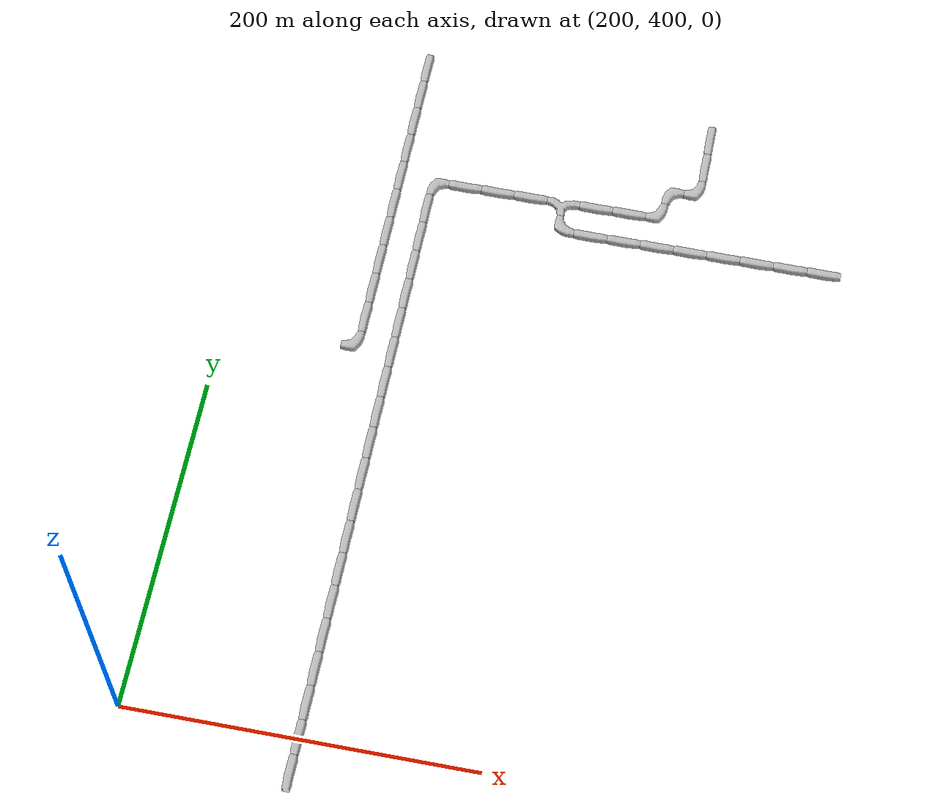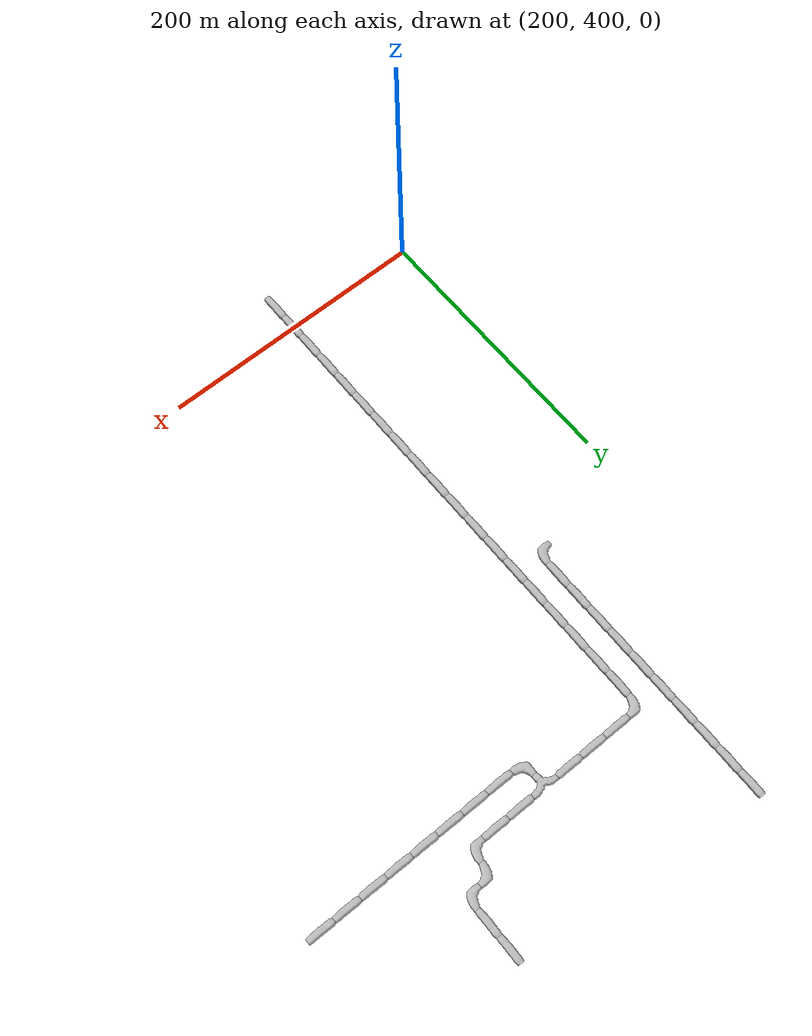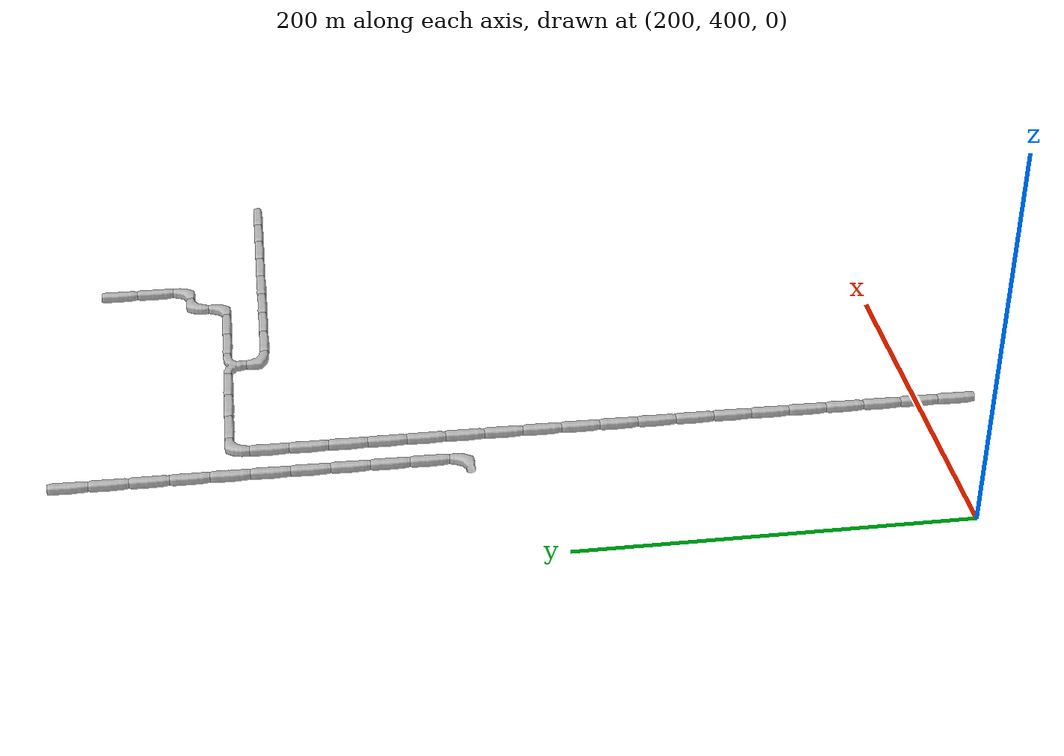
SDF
<sdf version="1.6">
 <world name="cave_16000_32">
  <include>
   <static>true</static>
   <name>cave_15_19</name>
   <pose>300 380 0 0 0 0.0</pose>
   <uri>model://cave_straight_20m</uri>
  </include>
  <include>
   <static>true</static>
   <name>cave_15_20</name>
   <pose>300 400 0 0 0 0.0</pose>
   <uri>model://cave_straight_20m</uri>
  </include>
  <include>
   <static>true</static>
   <name>cave_15_21</name>
   <pose>300 420 0 0 0 0.0</pose>
   <uri>model://cave_straight_20m</uri>
  </include>
  <include>
   <static>true</static>
   <name>cave_15_22</name>
   <pose>300 440 0 0 0 0.0</pose>
   <uri>model://cave_straight_20m</uri>
  </include>
  <include>
   <static>true</static>
   <name>cave_15_23</name>
   <pose>300 460 0 0 0 0.0</pose>
   <uri>model://cave_straight_20m</uri>
  </include>
  <include>
   <static>true</static>
   <name>cave_15_24</name>
   <pose>300 480 0 0 0 0.0</pose>
   <uri>model://cave_straight_20m</uri>
  </include>
  <include>
   <static>true</static>
   <name>cave_15_25</name>
   <pose>300 500 0 0 0 0.0</pose>
   <uri>model://cave_straight_20m</uri>
  </include>
  <include>
   <static>true</static>
   <name>cave_15_26</name>
   <pose>300 520 0 0 0 0.0</pose>
   <uri>model://cave_straight_20m</uri>
  </include>
  <include>
   <static>true</static>
   <name>cave_15_27</name>
   <pose>300 540 0 0 0 0.0</pose>
   <uri>model://cave_straight_20m</uri>
  </include>
  <include>
   <static>true</static>
   <name>cave_15_28</name>
   <pose>300 560 0 0 0 0.0</pose>
   <uri>model://cave_straight_20m</uri>
  </include>
  <include>
   <static>true</static>
   <name>cave_15_29</name>
   <pose>300 580 0 0 0 0.0</pose>
   <uri>model://cave_straight_20m</uri>
  </include>
  <include>
   <static>true</static>
   <name>cave_15_30</name>
   <pose>300 600 0 0 0 0.0</pose>
   <uri>model://cave_straight_20m</uri>
  </include>
  <include>
   <static>true</static>
   <name>cave_15_31</name>
   <pose>300 620 0 0 0 0.0</pose>
   <uri>model://cave_straight_20m</uri>
  </include>
  <include>
   <static>true</static>
   <name>cave_15_32</name>
   <pose>300 640 0 0 0 0.0</pose>
   <uri>model://cave_straight_20m</uri>
  </include>
  <include>
   <static>true</static>
   <name>cave_15_33</name>
   <pose>300 660 0 0 0 0.0</pose>
   <uri>model://cave_straight_20m</uri>
  </include>
  <include>
   <static>true</static>
   <name>cave_15_34</name>
   <pose>300 680 0 0 0 0.0</pose>
   <uri>model://cave_straight_20m</uri>
  </include>
  <include>
   <static>true</static>
   <name>cave_15_35</name>
   <pose>300 700 0 0 0 0.0</pose>
   <uri>model://cave_straight_20m</uri>
  </include>
  <include>
   <static>true</static>
   <name>cave_15_36</name>
   <pose>300 720 0 0 0 0.0</pose>
   <uri>model://cave_straight_20m</uri>
  </include>
  <include>
   <static>true</static>
   <name>cave_15_37</name>
   <pose>300 740 0 0 0 0.0</pose>
   <uri>model://cave_straight_20m</uri>
  </include>
  <include>
   <static>true</static>
   <name>cave_15_38</name>
   <pose>300 760 0 0 0 -1.5707963267948966</pose>
   <uri>model://cave_L_20m</uri>
  </include>
  <include>
   <static>true</static>
   <name>cave_16_38</name>
   <pose>320 760 0 0 0 1.5707963267948966</pose>
   <uri>model://cave_straight_20m</uri>
  </include>
  <include>
   <static>true</static>
   <name>cave_17_38</name>
   <pose>340 760 0 0 0 1.5707963267948966</pose>
   <uri>model://cave_straight_20m</uri>
  </include>
  <include>
   <static>true</static>
   <name>cave_18_38</name>
   <pose>360 760 0 0 0 1.5707963267948966</pose>
   <uri>model://cave_straight_20m</uri>
  </include>
  <include>
   <static>true</static>
   <name>cave_19_38</name>
   <pose>380 760 0 0 0 3.141592653589793</pose>
   <uri>model://cave_3way_20m</uri>
  </include>
  <include>
   <static>true</static>
   <name>cave_20_38</name>
   <pose>400 760 0 0 0 1.5707963267948966</pose>
   <uri>model://cave_straight_20m</uri>
  </include>
  <include>
   <static>true</static>
   <name>cave_21_38</name>
   <pose>420 760 0 0 0 1.5707963267948966</pose>
   <uri>model://cave_straight_20m</uri>
  </include>
  <include>
   <static>true</static>
   <name>cave_22_38</name>
   <pose>440 760 0 0 0 1.5707963267948966</pose>
   <uri>model://cave_L_20m</uri>
  </include>
  <include>
   <static>true</static>
   <name>cave_22_39</name>
   <pose>440 780 0 0 0 -1.5707963267948966</pose>
   <uri>model://cave_L_20m</uri>
  </include>
  <include>
   <static>true</static>
   <name>cave_23_39</name>
   <pose>460 780 0 0 0 1.5707963267948966</pose>
   <uri>model://cave_L_20m</uri>
  </include>
  <include>
   <static>true</static>
   <name>cave_23_40</name>
   <pose>460 800 0 0 0 0.0</pose>
   <uri>model://cave_straight_20m</uri>
  </include>
  <include>
   <static>true</static>
   <name>cave_23_41</name>
   <pose>460 820 0 0 0 0.0</pose>
   <uri>model://cave_straight_20m</uri>
  </include>
  <include>
   <static>true</static>
   <name>cave_19_37</name>
   <pose>380 740 0 0 0 0.0</pose>
   <uri>model://cave_L_20m</uri>
  </include>
  <include>
   <static>true</static>
   <name>cave_20_37</name>
   <pose>400 740 0 0 0 1.5707963267948966</pose>
   <uri>model://cave_straight_20m</uri>
  </include>
  <include>
   <static>true</static>
   <name>cave_21_37</name>
   <pose>420 740 0 0 0 1.5707963267948966</pose>
   <uri>model://cave_straight_20m</uri>
  </include>
  <include>
   <static>true</static>
   <name>cave_22_37</name>
   <pose>440 740 0 0 0 1.5707963267948966</pose>
   <uri>model://cave_straight_20m</uri>
  </include>
  <include>
   <static>true</static>
   <name>cave_23_37</name>
   <pose>460 740 0 0 0 1.5707963267948966</pose>
   <uri>model://cave_straight_20m</uri>
  </include>
  <include>
   <static>true</static>
   <name>cave_24_37</name>
   <pose>480 740 0 0 0 1.5707963267948966</pose>
   <uri>model://cave_straight_20m</uri>
  </include>
  <include>
   <static>true</static>
   <name>cave_25_37</name>
   <pose>500 740 0 0 0 1.5707963267948966</pose>
   <uri>model://cave_straight_20m</uri>
  </include>
  <include>
   <static>true</static>
   <name>cave_26_37</name>
   <pose>520 740 0 0 0 1.5707963267948966</pose>
   <uri>model://cave_straight_20m</uri>
  </include>
  <include>
   <static>true</static>
   <name>cave_27_37</name>
   <pose>540 740 0 0 0 1.5707963267948966</pose>
   <uri>model://cave_straight_20m</uri>
  </include>
  <include>
   <static>true</static>
   <name>cave_14_32</name>
   <pose>280 640 0 0 0 1.5707963267948966</pose>
   <uri>model://cave_L_20m</uri>
  </include>
  <include>
   <static>true</static>
   <name>cave_14_33</name>
   <pose>280 660 0 0 0 0.0</pose>
   <uri>model://cave_straight_20m</uri>
  </include>
  <include>
   <static>true</static>
   <name>cave_14_34</name>
   <pose>280 680 0 0 0 0.0</pose>
   <uri>model://cave_straight_20m</uri>
  </include>
  <include>
   <static>true</static>
   <name>cave_14_35</name>
   <pose>280 700 0 0 0 0.0</pose>
   <uri>model://cave_straight_20m</uri>
  </include>
  <include>
   <static>true</static>
   <name>cave_14_36</name>
   <pose>280 720 0 0 0 0.0</pose>
   <uri>model://cave_straight_20m</uri>
  </include>
  <include>
   <static>true</static>
   <name>cave_14_37</name>
   <pose>280 740 0 0 0 0.0</pose>
   <uri>model://cave_straight_20m</uri>
  </include>
  <include>
   <static>true</static>
   <name>cave_14_38</name>
   <pose>280 760 0 0 0 0.0</pose>
   <uri>model://cave_straight_20m</uri>
  </include>
  <include>
   <static>true</static>
   <name>cave_14_39</name>
   <pose>280 780 0 0 0 0.0</pose>
   <uri>model://cave_straight_20m</uri>
  </include>
  <include>
   <static>true</static>
   <name>cave_14_40</name>
   <pose>280 800 0 0 0 0.0</pose>
   <uri>model://cave_straight_20m</uri>
  </include>
  <include>
   <static>true</static>
   <name>cave_14_41</name>
   <pose>280 820 0 0 0 0.0</pose>
   <uri>model://cave_straight_20m</uri>
  </include>
  <include>
   <static>true</static>
   <name>cave_14_42</name>
   <pose>280 840 0 0 0 0.0</pose>
   <uri>model://cave_straight_20m</uri>
  </include>
 </world>
</sdf>
